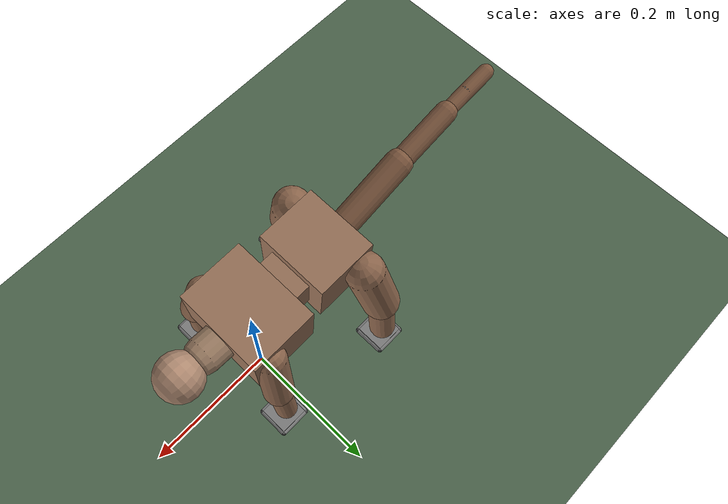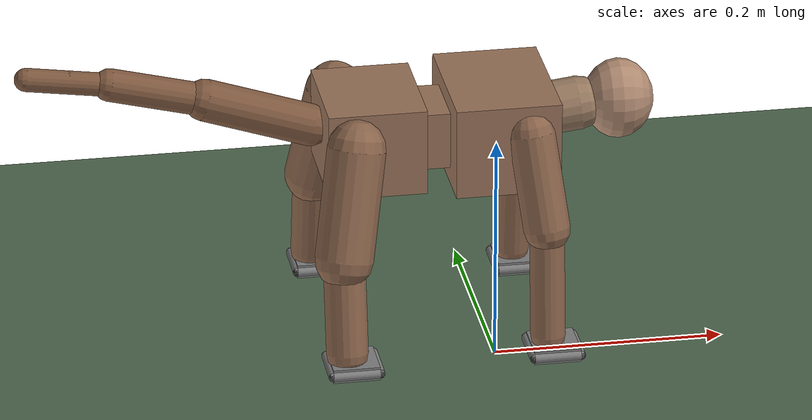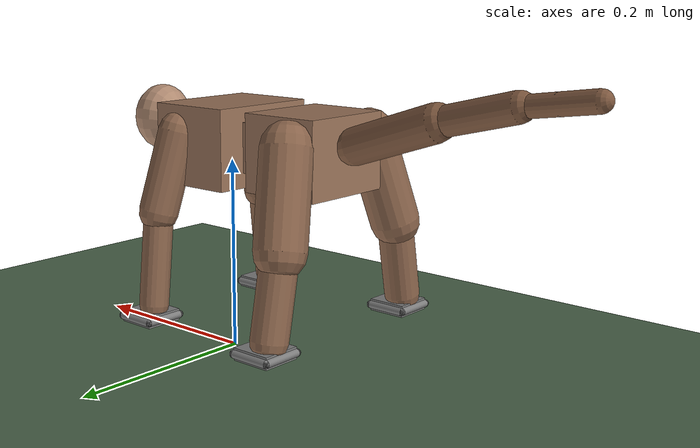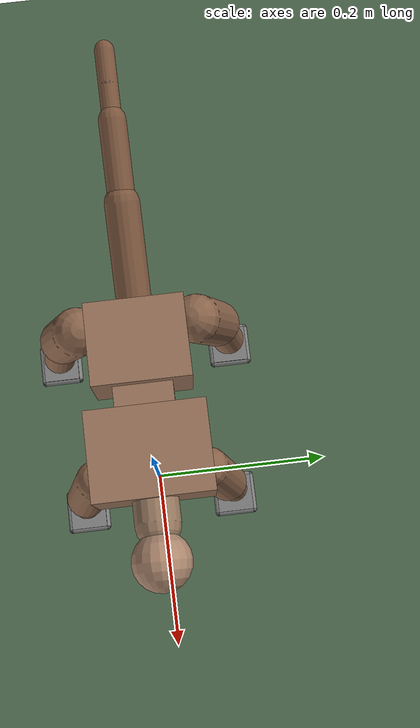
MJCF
<mujoco model="lucy">
  <!-- Lucy: Pre-hominid ancestor for quadrupedal/bipedal RL locomotion -->
  <compiler angle="degree" coordinate="local" inertiafromgeom="true" autolimits="true"/>
  <option integrator="Euler" timestep="0.003" gravity="0 0 -9.81">
    <flag warmstart="enable" multiccd="enable"/>
  </option>
  <size nconmax="200" njmax="500"/>

  <custom>
    <numeric data="0.0 0.0 0.22 1.0 0.0 0.0 0.0" name="init_qpos"/>
  </custom>

  <!-- ==================== DEFAULT CLASSES ==================== -->
  <default>
    <joint armature="0.2" damping="1.0" limited="true" frictionloss="0.1"/>
    <geom conaffinity="0" condim="3" density="125.0" friction="1 0.5 0.5" margin="0.001"/>
    <motor ctrllimited="true" ctrlrange="-0.5 0.5"/>

    <default class="torso">
      <geom rgba="0.6 0.45 0.35 1" density="200.0"/>
      <joint damping="0.8"/>
    </default>

    <default class="head">
      <geom rgba="0.7 0.55 0.45 1" density="25.0"/>
      <joint damping="0.6" range="0 70"/>
    </default>

    <default class="neck">
      <geom rgba="0.6 0.48 0.38 1" density="30.0"/>
      <joint damping="0.8" range="0 70"/>
    </default>

    <default class="front_leg">
      <geom rgba="0.55 0.4 0.3 1" density="250.0"/>
      <default class="front_hip">
        <joint damping="0.5" range="0 60"/>
      </default>

      <!-- Knee: prevent hyperextension + keep it "mid-bent" (no negative range) -->
      <default class="front_knee">
        <joint type="hinge" axis="0 1 0" damping="0.6" range="20 150"/>
      </default>

      <!-- Ankle pitch -->
      <default class="front_ankle">
        <joint type="hinge" axis="0 1 0" damping="0.4" range="-60 60"/>
      </default>
    </default>

    <default class="hind_leg">
      <geom rgba="0.55 0.4 0.3 1" density="250.0"/>

      <!-- Hip: increase cone range to allow large flexion for bipedal walking -->
      <default class="hind_hip">
        <joint damping="0.5" range="0 120"/>
      </default>

      <!-- Knee: prevent hyperextension + keep it "mid-bent" (no negative range) -->
      <default class="hind_knee">
        <joint type="hinge" axis="0 1 0" damping="0.6" range="25 155"/>
      </default>

      <!-- Ankle pitch -->
      <default class="hind_ankle">
        <joint type="hinge" axis="0 1 0" damping="0.4" range="-60 60"/>
      </default>
    </default>

    <!-- Secondary foot tilt (roll) -->
    <default class="foot_tilt">
      <!-- small range for stability -->
      <joint type="hinge" axis="1 0 0" damping="0.25" range="-15 15"/>
    </default>

    <!-- Reusable FLAT SQUARE FOOT (+ optional fillet approximation) -->
    <default class="foot">
      <!-- Stable contact -->
      <geom conaffinity="1" condim="4" friction="1.5 0.5 0.5" solref="0.02 0.02" margin="0.0008"/>

      <default class="foot_sole">
        <geom type="box" pos="0.005 0.000 -0.012" size="0.020 0.020 0.006"/>
      </default>

      <default class="foot_edge_xp">
        <geom type="capsule" fromto="0.025 -0.020 -0.012 0.025  0.020 -0.012" size="0.004"/>
      </default>
      <default class="foot_edge_xn">
        <geom type="capsule" fromto="-0.015 -0.020 -0.012 -0.015  0.020 -0.012" size="0.004"/>
      </default>
      <default class="foot_edge_yp">
        <geom type="capsule" fromto="-0.015  0.020 -0.012 0.025  0.020 -0.012" size="0.004"/>
      </default>
      <default class="foot_edge_yn">
        <geom type="capsule" fromto="-0.015 -0.020 -0.012 0.025 -0.020 -0.012" size="0.004"/>
      </default>

      <default class="foot_corner_pp">
        <geom type="sphere" pos="0.025  0.020 -0.012" size="0.004"/>
      </default>
      <default class="foot_corner_pn">
        <geom type="sphere" pos="0.025 -0.020 -0.012" size="0.004"/>
      </default>
      <default class="foot_corner_np">
        <geom type="sphere" pos="-0.015  0.020 -0.012" size="0.004"/>
      </default>
      <default class="foot_corner_nn">
        <geom type="sphere" pos="-0.015 -0.020 -0.012" size="0.004"/>
      </default>
    </default>

    <!-- Tail segments (no twist DOF: implemented as 2-hinge "universal" joints per segment) -->
    <default class="tail">
      <geom rgba="0.5 0.35 0.25 1" density="250.0"/>
      <joint damping="0.3"/>
    </default>
  </default>

  <!-- ==================== ASSETS ==================== -->
  <asset>
    <texture builtin="gradient" height="100" rgb1="0.8 0.9 1" rgb2="0.4 0.5 0.6" type="skybox" width="100"/>
    <texture builtin="checker" height="100" name="texplane" rgb1="0.2 0.3 0.2" rgb2="0.4 0.5 0.4" type="2d" width="100"/>
    <texture name="face_tex" type="2d" file="roblox_face.png"/>
    <material name="MatPlane" reflectance="0.5" shininess="1" specular="1" texrepeat="60 60" texture="texplane"/>
    <material name="face" texture="face_tex" texrepeat="1 1"/>
  </asset>

  <!-- ==================== WORLD ==================== -->
  <worldbody>
    <light cutoff="100" diffuse="1 1 1" dir="0 0 -1.3" directional="true" exponent="1" pos="0 0 1.3" specular=".1 .1 .1"/>
    <geom conaffinity="1" condim="3" material="MatPlane" name="floor" pos="0 0 0" size="40 40 0.1" type="plane" margin="0.001"/>

    <body name="chest" pos="0 0 0.22">
      <camera name="track" mode="trackcom" pos="0 -1 0.1" xyaxes="1 0 0 0 0 1"/>
      <joint name="root" type="free" armature="0" damping="0" limited="false"/>
      <geom class="torso" name="chest_geom" type="box" size="0.045 0.06 0.04"/>
      <site name="chest_site" pos="0 0 0" size="0.01"/>

      <body name="neck" pos="0.045 0 0.01">
        <joint class="neck" name="neck_base" type="ball" pos="-0.015 0 0"/>
        <geom class="neck" name="neck_geom" type="capsule" fromto="0 0 0 0.025 0 0.003" size="0.023"/>
        <site name="neck_site" pos="0.012 0 0" size="0.008"/>

        <body name="head" pos="0.05 0 0.005">
          <joint class="head" name="neck_head" type="ball" pos="-0.02 0 0"/>
          <geom class="head" name="head_geom" type="ellipsoid" size="0.035 0.03 0.03" pos="0.01 0 0" euler="0 90 0" material="face"/>
          <site name="head_site" pos="0.01 0 0" size="0.01"/>
        </body>
      </body>

      <body name="front_left_thigh" pos="0.02 0.055 0.013">
        <joint class="front_hip" name="front_left_hip" type="ball"/>
        <geom class="front_leg" name="front_left_thigh_geom" type="capsule" fromto="0 0 0 0.01 0.02 -0.08" size="0.02"/>
        <site name="front_left_thigh_site" pos="0.005 0.01 -0.04" size="0.01"/>

        <body name="front_left_shin" pos="0.01 0.02 -0.08">
          <joint class="front_knee" name="front_left_knee" type="hinge"/>
          <geom class="front_leg" name="front_left_shin_geom" type="capsule" fromto="0 0 0 0 0.01 -0.095" size="0.015"/>
          <site name="front_left_shin_site" pos="0 0.005 -0.047" size="0.01"/>

          <body name="front_left_foot" pos="0 0.01 -0.095">
            <joint class="front_ankle" name="front_left_ankle" type="hinge"/>
            <joint class="foot_tilt" name="front_left_tilt" type="hinge"/>

            <geom class="foot_sole" name="front_left_sole"/>
            <geom class="foot_edge_xp" name="front_left_edge_xp"/>
            <geom class="foot_edge_xn" name="front_left_edge_xn"/>
            <geom class="foot_edge_yp" name="front_left_edge_yp"/>
            <geom class="foot_edge_yn" name="front_left_edge_yn"/>
            <geom class="foot_corner_pp" name="front_left_corner_pp"/>
            <geom class="foot_corner_pn" name="front_left_corner_pn"/>
            <geom class="foot_corner_np" name="front_left_corner_np"/>
            <geom class="foot_corner_nn" name="front_left_corner_nn"/>

            <site name="front_left_foot_site" pos="0.005 0.000 -0.012" size="0.01"/>
          </body>
        </body>
      </body>

      <body name="front_right_thigh" pos="0.02 -0.055 0.013">
        <joint class="front_hip" name="front_right_hip" type="ball"/>
        <geom class="front_leg" name="front_right_thigh_geom" type="capsule" fromto="0 0 0 0.01 -0.02 -0.08" size="0.02"/>
        <site name="front_right_thigh_site" pos="0.005 -0.01 -0.04" size="0.01"/>

        <body name="front_right_shin" pos="0.01 -0.02 -0.08">
          <joint class="front_knee" name="front_right_knee" type="hinge"/>
          <geom class="front_leg" name="front_right_shin_geom" type="capsule" fromto="0 0 0 0 -0.01 -0.095" size="0.015"/>
          <site name="front_right_shin_site" pos="0 -0.005 -0.047" size="0.01"/>

          <body name="front_right_foot" pos="0 -0.01 -0.095">
            <joint class="front_ankle" name="front_right_ankle" type="hinge"/>
            <joint class="foot_tilt" name="front_right_tilt" type="hinge"/>

            <geom class="foot_sole" name="front_right_sole"/>
            <geom class="foot_edge_xp" name="front_right_edge_xp"/>
            <geom class="foot_edge_xn" name="front_right_edge_xn"/>
            <geom class="foot_edge_yp" name="front_right_edge_yp"/>
            <geom class="foot_edge_yn" name="front_right_edge_yn"/>
            <geom class="foot_corner_pp" name="front_right_corner_pp"/>
            <geom class="foot_corner_pn" name="front_right_corner_pn"/>
            <geom class="foot_corner_np" name="front_right_corner_np"/>
            <geom class="foot_corner_nn" name="front_right_corner_nn"/>

            <site name="front_right_foot_site" pos="0.005 0.000 -0.012" size="0.01"/>
          </body>
        </body>
      </body>

      <body name="trunk" pos="-0.06 0 0">
        <joint class="torso" name="spine_chest" type="ball" pos="0.02 0 0" range="0 35"/>
        <geom class="torso" name="trunk_geom" type="box" size="0.02 0.03 0.025"/>
        <site name="trunk_site" pos="0 0 0" size="0.01"/>

        <body name="hips" pos="-0.05 0 0">
          <joint class="torso" name="spine_hips" type="ball" pos="0.02 0 0" range="0 35"/>
          <geom class="torso" name="hips_geom" type="box" size="0.042 0.05 0.038" density="500.0"/>
          <site name="hips_site" pos="0 0 0" size="0.01"/>

          <body name="hind_left_thigh" pos="-0.02 0.06 0.013">
            <joint class="hind_hip" name="hind_left_hip" type="ball"/>
            <geom class="hind_leg" name="hind_left_thigh_geom" type="capsule" fromto="0 0 0 -0.015 0.025 -0.09" size="0.025"/>
            <site name="hind_left_thigh_site" pos="-0.007 0.012 -0.045" size="0.01"/>

            <body name="hind_left_shin" pos="-0.015 0.025 -0.09">
              <joint class="hind_knee" name="hind_left_knee" type="hinge"/>
              <geom class="hind_leg" name="hind_left_shin_geom" type="capsule" fromto="0 0 0 0 0.015 -0.08" size="0.018"/>
              <site name="hind_left_shin_site" pos="0 0.007 -0.04" size="0.01"/>

              <body name="hind_left_foot" pos="0 0.015 -0.08">
                <joint class="hind_ankle" name="hind_left_ankle" type="hinge"/>
                <joint class="foot_tilt" name="hind_left_tilt" type="hinge"/>

                <geom class="foot_sole" name="hind_left_sole"/>
                <geom class="foot_edge_xp" name="hind_left_edge_xp"/>
                <geom class="foot_edge_xn" name="hind_left_edge_xn"/>
                <geom class="foot_edge_yp" name="hind_left_edge_yp"/>
                <geom class="foot_edge_yn" name="hind_left_edge_yn"/>
                <geom class="foot_corner_pp" name="hind_left_corner_pp"/>
                <geom class="foot_corner_pn" name="hind_left_corner_pn"/>
                <geom class="foot_corner_np" name="hind_left_corner_np"/>
                <geom class="foot_corner_nn" name="hind_left_corner_nn"/>

                <site name="hind_left_foot_site" pos="0.005 0.000 -0.012" size="0.01"/>
              </body>
            </body>
          </body>

          <body name="hind_right_thigh" pos="-0.02 -0.06 0.013">
            <joint class="hind_hip" name="hind_right_hip" type="ball"/>
            <geom class="hind_leg" name="hind_right_thigh_geom" type="capsule" fromto="0 0 0 -0.015 -0.025 -0.09" size="0.025"/>
            <site name="hind_right_thigh_site" pos="-0.007 -0.012 -0.045" size="0.01"/>

            <body name="hind_right_shin" pos="-0.015 -0.025 -0.09">
              <joint class="hind_knee" name="hind_right_knee" type="hinge"/>
              <geom class="hind_leg" name="hind_right_shin_geom" type="capsule" fromto="0 0 0 0 -0.015 -0.08" size="0.018"/>
              <site name="hind_right_shin_site" pos="0 -0.007 -0.04" size="0.01"/>

              <body name="hind_right_foot" pos="0 -0.015 -0.08">
                <joint class="hind_ankle" name="hind_right_ankle" type="hinge"/>
                <joint class="foot_tilt" name="hind_right_tilt" type="hinge"/>

                <geom class="foot_sole" name="hind_right_sole"/>
                <geom class="foot_edge_xp" name="hind_right_edge_xp"/>
                <geom class="foot_edge_xn" name="hind_right_edge_xn"/>
                <geom class="foot_edge_yp" name="hind_right_edge_yp"/>
                <geom class="foot_edge_yn" name="hind_right_edge_yn"/>
                <geom class="foot_corner_pp" name="hind_right_corner_pp"/>
                <geom class="foot_corner_pn" name="hind_right_corner_pn"/>
                <geom class="foot_corner_np" name="hind_right_corner_np"/>
                <geom class="foot_corner_nn" name="hind_right_corner_nn"/>

                <site name="hind_right_foot_site" pos="0.005 0.000 -0.012" size="0.01"/>
              </body>
            </body>
          </body>

          <!-- ========== TAIL (2 DOF per segment, no twist) ========== -->
          <body name="tail_1" pos="-0.05 0 0.01">
            <joint class="tail" name="tail_joint_1_y" type="hinge" axis="0 1 0" range="-60 60" damping="0.3"/>
            <joint class="tail" name="tail_joint_1_z" type="hinge" axis="0 0 1" range="-60 60" damping="0.3"/>
            <geom class="tail" name="tail_1_geom" type="capsule" fromto="0 0 0 -0.09 0 0.03" size="0.018"/>
            <site name="tail_1_site" pos="-0.045 0 0.015" size="0.01"/>

            <body name="tail_2" pos="-0.09 0 0.03">
              <joint class="tail" name="tail_joint_2_y" type="hinge" axis="0 1 0" range="-60 60" damping="0.3"/>
              <joint class="tail" name="tail_joint_2_z" type="hinge" axis="0 0 1" range="-60 60" damping="0.3"/>
              <geom class="tail" name="tail_2_geom" type="capsule" fromto="0 0 0 -0.08 0 0.02" size="0.014"/>
              <site name="tail_2_site" pos="-0.04 0 0.01" size="0.01"/>

              <body name="tail_3" pos="-0.08 0 0.02">
                <joint class="tail" name="tail_joint_3_y" type="hinge" axis="0 1 0" range="-60 60" damping="0.3"/>
                <joint class="tail" name="tail_joint_3_z" type="hinge" axis="0 0 1" range="-60 60" damping="0.3"/>
                <geom class="tail" name="tail_3_geom" type="capsule" fromto="0 0 0 -0.07 0 0.01" size="0.01"/>
                <site name="tail_3_site" pos="-0.035 0 0.005" size="0.01"/>
              </body>
            </body>
          </body>

        </body>
      </body>
    </body>
  </worldbody>

  <!-- ==================== ACTUATORS ==================== -->
  <actuator>
    <motor name="neck_base_x" joint="neck_base" gear="5 0 0" ctrllimited="true" ctrlrange="-0.5 0.5"/>
    <motor name="neck_base_y" joint="neck_base" gear="0 5 0" ctrllimited="true" ctrlrange="-0.5 0.5"/>
    <motor name="neck_base_z" joint="neck_base" gear="0 0 5" ctrllimited="true" ctrlrange="-0.5 0.5"/>

    <motor name="neck_head_x" joint="neck_head" gear="5 0 0" ctrllimited="true" ctrlrange="-0.5 0.5"/>
    <motor name="neck_head_y" joint="neck_head" gear="0 5 0" ctrllimited="true" ctrlrange="-0.5 0.5"/>
    <motor name="neck_head_z" joint="neck_head" gear="0 0 5" ctrllimited="true" ctrlrange="-0.5 0.5"/>

    <motor name="spine_chest_x" joint="spine_chest" gear="10 0 0" ctrllimited="true" ctrlrange="-0.5 0.5"/>
    <motor name="spine_chest_y" joint="spine_chest" gear="0 10 0" ctrllimited="true" ctrlrange="-0.5 0.5"/>
    <motor name="spine_chest_z" joint="spine_chest" gear="0 0 10" ctrllimited="true" ctrlrange="-0.5 0.5"/>

    <motor name="spine_hips_x" joint="spine_hips" gear="10 0 0" ctrllimited="true" ctrlrange="-0.5 0.5"/>
    <motor name="spine_hips_y" joint="spine_hips" gear="0 10 0" ctrllimited="true" ctrlrange="-0.5 0.5"/>
    <motor name="spine_hips_z" joint="spine_hips" gear="0 0 10" ctrllimited="true" ctrlrange="-0.5 0.5"/>

    <motor name="fl_hip_x" joint="front_left_hip" gear="12 0 0" ctrllimited="true" ctrlrange="-0.5 0.5"/>
    <motor name="fl_hip_y" joint="front_left_hip" gear="0 12 0" ctrllimited="true" ctrlrange="-0.5 0.5"/>
    <motor name="fl_hip_z" joint="front_left_hip" gear="0 0 12" ctrllimited="true" ctrlrange="-0.5 0.5"/>
    <motor name="fl_knee" joint="front_left_knee" gear="10" ctrllimited="true" ctrlrange="-0.5 0.5"/>
    <motor name="fl_ankle" joint="front_left_ankle" gear="7" ctrllimited="true" ctrlrange="-0.5 0.5"/>
    <motor name="fl_tilt" joint="front_left_tilt" gear="4" ctrllimited="true" ctrlrange="-0.5 0.5"/>

    <motor name="fr_hip_x" joint="front_right_hip" gear="12 0 0" ctrllimited="true" ctrlrange="-0.5 0.5"/>
    <motor name="fr_hip_y" joint="front_right_hip" gear="0 12 0" ctrllimited="true" ctrlrange="-0.5 0.5"/>
    <motor name="fr_hip_z" joint="front_right_hip" gear="0 0 12" ctrllimited="true" ctrlrange="-0.5 0.5"/>
    <motor name="fr_knee" joint="front_right_knee" gear="10" ctrllimited="true" ctrlrange="-0.5 0.5"/>
    <motor name="fr_ankle" joint="front_right_ankle" gear="7" ctrllimited="true" ctrlrange="-0.5 0.5"/>
    <motor name="fr_tilt" joint="front_right_tilt" gear="4" ctrllimited="true" ctrlrange="-0.5 0.5"/>

    <motor name="hl_hip_x" joint="hind_left_hip" gear="12 0 0" ctrllimited="true" ctrlrange="-0.5 0.5"/>
    <motor name="hl_hip_y" joint="hind_left_hip" gear="0 12 0" ctrllimited="true" ctrlrange="-0.5 0.5"/>
    <motor name="hl_hip_z" joint="hind_left_hip" gear="0 0 12" ctrllimited="true" ctrlrange="-0.5 0.5"/>
    <motor name="hl_knee" joint="hind_left_knee" gear="10" ctrllimited="true" ctrlrange="-0.5 0.5"/>
    <motor name="hl_ankle" joint="hind_left_ankle" gear="7" ctrllimited="true" ctrlrange="-0.5 0.5"/>
    <motor name="hl_tilt" joint="hind_left_tilt" gear="4" ctrllimited="true" ctrlrange="-0.5 0.5"/>

    <motor name="hr_hip_x" joint="hind_right_hip" gear="12 0 0" ctrllimited="true" ctrlrange="-0.5 0.5"/>
    <motor name="hr_hip_y" joint="hind_right_hip" gear="0 12 0" ctrllimited="true" ctrlrange="-0.5 0.5"/>
    <motor name="hr_hip_z" joint="hind_right_hip" gear="0 0 12" ctrllimited="true" ctrlrange="-0.5 0.5"/>
    <motor name="hr_knee" joint="hind_right_knee" gear="10" ctrllimited="true" ctrlrange="-0.5 0.5"/>
    <motor name="hr_ankle" joint="hind_right_ankle" gear="7" ctrllimited="true" ctrlrange="-0.5 0.5"/>
    <motor name="hr_tilt" joint="hind_right_tilt" gear="4" ctrllimited="true" ctrlrange="-0.5 0.5"/>

    <motor name="tail_1_y" joint="tail_joint_1_y" gear="5" ctrllimited="true" ctrlrange="-0.5 0.5"/>
    <motor name="tail_1_z" joint="tail_joint_1_z" gear="5" ctrllimited="true" ctrlrange="-0.5 0.5"/>
    <motor name="tail_2_y" joint="tail_joint_2_y" gear="5" ctrllimited="true" ctrlrange="-0.5 0.5"/>
    <motor name="tail_2_z" joint="tail_joint_2_z" gear="5" ctrllimited="true" ctrlrange="-0.5 0.5"/>
    <motor name="tail_3_y" joint="tail_joint_3_y" gear="5" ctrllimited="true" ctrlrange="-0.5 0.5"/>
    <motor name="tail_3_z" joint="tail_joint_3_z" gear="5" ctrllimited="true" ctrlrange="-0.5 0.5"/>
  </actuator>

  <!-- ==================== SENSORS ==================== -->
  <sensor>
    <accelerometer name="imu_acc" site="chest_site"/>
    <gyro name="imu_gyro" site="chest_site"/>
    <velocimeter name="imu_vel" site="chest_site"/>

    <touch name="touch_fl" site="front_left_foot_site"/>
    <touch name="touch_fr" site="front_right_foot_site"/>
    <touch name="touch_hl" site="hind_left_foot_site"/>
    <touch name="touch_hr" site="hind_right_foot_site"/>

    <accelerometer name="acc_trunk" site="trunk_site"/>
    <velocimeter name="vel_trunk" site="trunk_site"/>
    <accelerometer name="acc_hips" site="hips_site"/>
    <velocimeter name="vel_hips" site="hips_site"/>

    <accelerometer name="acc_fl_thigh" site="front_left_thigh_site"/>
    <velocimeter name="vel_fl_thigh" site="front_left_thigh_site"/>
    <accelerometer name="acc_fl_shin" site="front_left_shin_site"/>
    <velocimeter name="vel_fl_shin" site="front_left_shin_site"/>
    <accelerometer name="acc_fl_foot" site="front_left_foot_site"/>
    <velocimeter name="vel_fl_foot" site="front_left_foot_site"/>

    <accelerometer name="acc_fr_thigh" site="front_right_thigh_site"/>
    <velocimeter name="vel_fr_thigh" site="front_right_thigh_site"/>
    <accelerometer name="acc_fr_shin" site="front_right_shin_site"/>
    <velocimeter name="vel_fr_shin" site="front_right_shin_site"/>
    <accelerometer name="acc_fr_foot" site="front_right_foot_site"/>
    <velocimeter name="vel_fr_foot" site="front_right_foot_site"/>

    <accelerometer name="acc_hl_thigh" site="hind_left_thigh_site"/>
    <velocimeter name="vel_hl_thigh" site="hind_left_thigh_site"/>
    <accelerometer name="acc_hl_shin" site="hind_left_shin_site"/>
    <velocimeter name="vel_hl_shin" site="hind_left_shin_site"/>
    <accelerometer name="acc_hl_foot" site="hind_left_foot_site"/>
    <velocimeter name="vel_hl_foot" site="hind_left_foot_site"/>

    <accelerometer name="acc_hr_thigh" site="hind_right_thigh_site"/>
    <velocimeter name="vel_hr_thigh" site="hind_right_thigh_site"/>
    <accelerometer name="acc_hr_shin" site="hind_right_shin_site"/>
    <velocimeter name="vel_hr_shin" site="hind_right_shin_site"/>
    <accelerometer name="acc_hr_foot" site="hind_right_foot_site"/>
    <velocimeter name="vel_hr_foot" site="hind_right_foot_site"/>

    <ballquat name="q_neck_base" joint="neck_base"/>
    <ballquat name="q_neck_head" joint="neck_head"/>
    <ballquat name="q_spine_chest" joint="spine_chest"/>
    <ballquat name="q_spine_hips" joint="spine_hips"/>
    <ballquat name="q_fl_hip" joint="front_left_hip"/>
    <ballquat name="q_fr_hip" joint="front_right_hip"/>
    <ballquat name="q_hl_hip" joint="hind_left_hip"/>
    <ballquat name="q_hr_hip" joint="hind_right_hip"/>

    <jointpos name="p_fl_knee" joint="front_left_knee"/>
    <jointpos name="p_fl_ankle" joint="front_left_ankle"/>
    <jointpos name="p_fl_tilt" joint="front_left_tilt"/>

    <jointpos name="p_fr_knee" joint="front_right_knee"/>
    <jointpos name="p_fr_ankle" joint="front_right_ankle"/>
    <jointpos name="p_fr_tilt" joint="front_right_tilt"/>

    <jointpos name="p_hl_knee" joint="hind_left_knee"/>
    <jointpos name="p_hl_ankle" joint="hind_left_ankle"/>
    <jointpos name="p_hl_tilt" joint="hind_left_tilt"/>

    <jointpos name="p_hr_knee" joint="hind_right_knee"/>
    <jointpos name="p_hr_ankle" joint="hind_right_ankle"/>
    <jointpos name="p_hr_tilt" joint="hind_right_tilt"/>

    <jointpos name="p_tail1_y" joint="tail_joint_1_y"/>
    <jointpos name="p_tail1_z" joint="tail_joint_1_z"/>
    <jointpos name="p_tail2_y" joint="tail_joint_2_y"/>
    <jointpos name="p_tail2_z" joint="tail_joint_2_z"/>
    <jointpos name="p_tail3_y" joint="tail_joint_3_y"/>
    <jointpos name="p_tail3_z" joint="tail_joint_3_z"/>

    <ballangvel name="w_neck_base" joint="neck_base"/>
    <ballangvel name="w_neck_head" joint="neck_head"/>
    <ballangvel name="w_spine_chest" joint="spine_chest"/>
    <ballangvel name="w_spine_hips" joint="spine_hips"/>
    <ballangvel name="w_fl_hip" joint="front_left_hip"/>
    <ballangvel name="w_fr_hip" joint="front_right_hip"/>
    <ballangvel name="w_hl_hip" joint="hind_left_hip"/>
    <ballangvel name="w_hr_hip" joint="hind_right_hip"/>

    <jointvel name="v_fl_knee" joint="front_left_knee"/>
    <jointvel name="v_fl_ankle" joint="front_left_ankle"/>
    <jointvel name="v_fl_tilt" joint="front_left_tilt"/>

    <jointvel name="v_fr_knee" joint="front_right_knee"/>
    <jointvel name="v_fr_ankle" joint="front_right_ankle"/>
    <jointvel name="v_fr_tilt" joint="front_right_tilt"/>

    <jointvel name="v_hl_knee" joint="hind_left_knee"/>
    <jointvel name="v_hl_ankle" joint="hind_left_ankle"/>
    <jointvel name="v_hl_tilt" joint="hind_left_tilt"/>

    <jointvel name="v_hr_knee" joint="hind_right_knee"/>
    <jointvel name="v_hr_ankle" joint="hind_right_ankle"/>
    <jointvel name="v_hr_tilt" joint="hind_right_tilt"/>

    <jointvel name="v_tail1_y" joint="tail_joint_1_y"/>
    <jointvel name="v_tail1_z" joint="tail_joint_1_z"/>
    <jointvel name="v_tail2_y" joint="tail_joint_2_y"/>
    <jointvel name="v_tail2_z" joint="tail_joint_2_z"/>
    <jointvel name="v_tail3_y" joint="tail_joint_3_y"/>
    <jointvel name="v_tail3_z" joint="tail_joint_3_z"/>

    <framequat name="chest_orient" objtype="body" objname="chest"/>
  </sensor>

  <!-- ==================== KEYFRAMES ==================== -->
  <keyframe>
    <!-- Added 1 extra DOF per foot (tilt) -> inserted a 0 after each ankle value -->
    <key name="quad_stance" qpos="
      0 0 0.17  1 0 0 0
      0.9914  0.1305  0  0
      0.9914 -0.1305  0  0

      0.9848 0 -0.1736 0   1.20  -0.85  0
      0.9848 0 -0.1736 0   1.20  -0.85  0

      0.9914  0.1305  0  0
      0.9914 -0.1305  0  0

      0.9763 0 -0.2164 0   1.30  -0.95  0
      0.9763 0 -0.2164 0   1.30  -0.95  0

      0 0
      0 0
      0 0
    "/>
  </keyframe>

  <!-- ==================== CONTACT EXCLUSIONS ==================== -->
  <contact>
    <exclude body1="chest" body2="trunk"/>
    <exclude body1="trunk" body2="hips"/>
    <exclude body1="chest" body2="neck"/>
    <exclude body1="neck" body2="head"/>
    <exclude body1="hips" body2="tail_1"/>
    <exclude body1="tail_1" body2="tail_2"/>
    <exclude body1="tail_2" body2="tail_3"/>
    <exclude body1="front_left_thigh" body2="chest"/>
    <exclude body1="front_right_thigh" body2="chest"/>
    <exclude body1="hind_left_thigh" body2="hips"/>
    <exclude body1="hind_right_thigh" body2="hips"/>
  </contact>
</mujoco>
